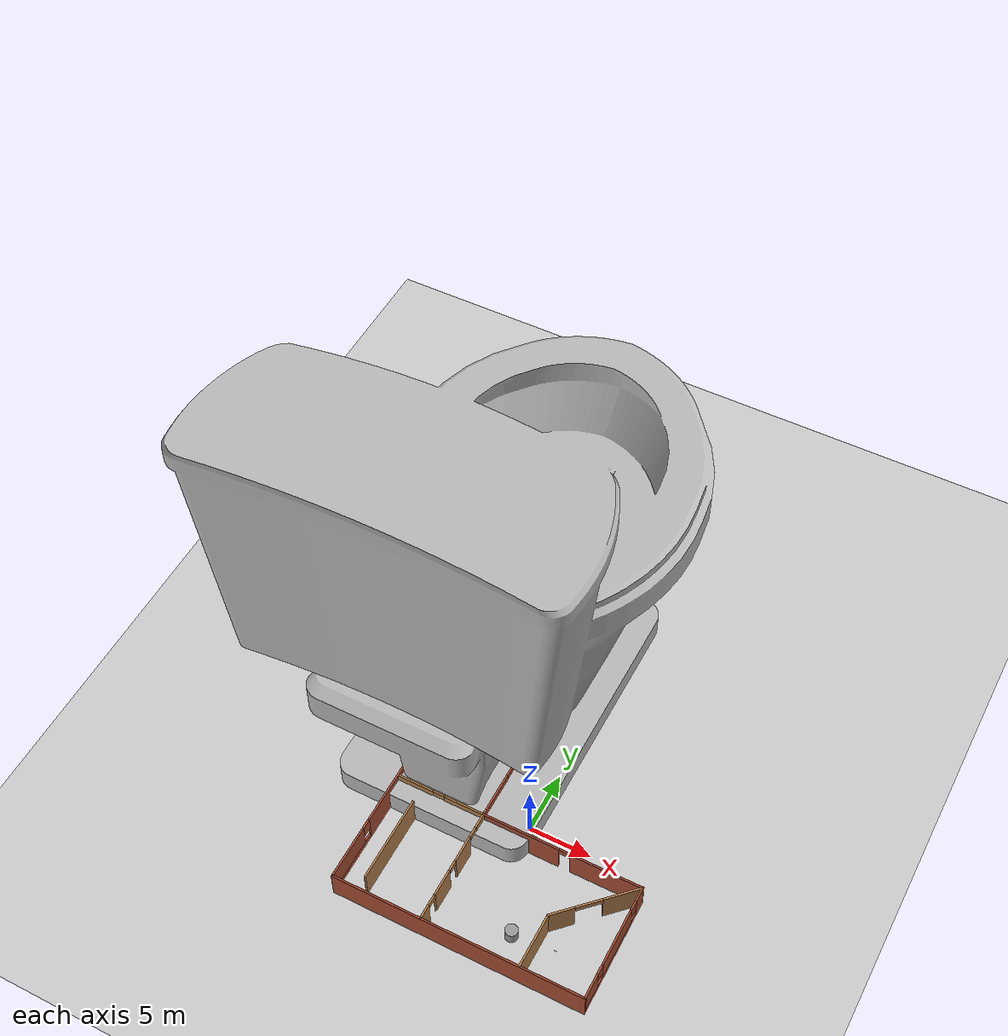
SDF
<sdf version="1.10">
 <world name="toilet_world">
  <model name="ground_plane">
   <static>true</static>
   <link name="link">
    <collision name="collision">
     <geometry><plane><normal>0 0 1</normal><size>100 100</size></plane></geometry>
     <surface><friction><ode><mu>100</mu><mu2>50</mu2></ode></friction></surface>
    </collision>
    <visual name="visual">
     <cast_shadows>false</cast_shadows>
     <geometry><plane><normal>0 0 1</normal><size>100 100</size></plane></geometry>
     <material>
      <script><uri>file://media/materials/scripts/gazebo.material</uri><name>Gazebo/Grey</name></script>
     </material>
    </visual>
    <inertial>
     <mass>1</mass>
     <inertia><ixx>1</ixx><ixy>0</ixy><ixz>0</ixz><iyy>1</iyy><iyz>0</iyz><izz>1</izz></inertia>
    </inertial>
   </link>
  </model>
  <model name="test_room">
   <pose>-0.077849000000002277 -1.2312600000000151 0 0 0 -1.4432899320127035e-15</pose>
   <link name="Wall_1">
    <pose>-10.0852 -6.9999999999999999e-06 0 0 0 -1.5708</pose>
    <visual name="Wall_1_Visual_0">
     <pose>-2.6008399999999998 0 1.25 0 0 0</pose>
     <geometry><box><size>14.826599999999999 0.14999999999999999 2.5</size></box></geometry>
     <material>
      <script><uri>file://media/materials/scripts/gazebo.material</uri><name>Gazebo/Bricks</name></script>
      <ambient>1 1 1 1</ambient>
     </material>
     <meta><layer>0</layer></meta>
    </visual>
    <collision name="Wall_1_Collision_0">
     <geometry><box><size>14.826599999999999 0.14999999999999999 2.5</size></box></geometry>
     <pose>-2.6008399999999998 0 1.25 0 0 0</pose>
    </collision>
    <visual name="Wall_1_Visual_1">
     <pose>7.4133100000000001 0 0.25 0 0 0</pose>
     <geometry><box><size>5.20167 0.14999999999999999 0.5</size></box></geometry>
     <material>
      <script><uri>file://media/materials/scripts/gazebo.material</uri><name>Gazebo/Bricks</name></script>
      <ambient>1 1 1 1</ambient>
     </material>
     <meta><layer>0</layer></meta>
    </visual>
    <collision name="Wall_1_Collision_1">
     <geometry><box><size>5.20167 0.14999999999999999 0.5</size></box></geometry>
     <pose>7.4133100000000001 0 0.25 0 0 0</pose>
    </collision>
    <visual name="Wall_1_Visual_2">
     <pose>7.8133100000000004 0 1.5 0 0 0</pose>
     <geometry><box><size>4.4016700000000002 0.14999999999999999 2</size></box></geometry>
     <material>
      <script><uri>file://media/materials/scripts/gazebo.material</uri><name>Gazebo/Bricks</name></script>
      <ambient>1 1 1 1</ambient>
     </material>
     <meta><layer>0</layer></meta>
    </visual>
    <collision name="Wall_1_Collision_2">
     <geometry><box><size>4.4016700000000002 0.14999999999999999 2</size></box></geometry>
     <pose>7.8133100000000004 0 1.5 0 0 0</pose>
    </collision>
    <visual name="Wall_1_Visual_3">
     <pose>5.2124800000000002 0 1.8999999999999999 0 0 0</pose>
     <geometry><box><size>0.80000000000000004 0.14999999999999999 1.2</size></box></geometry>
     <material>
      <script><uri>file://media/materials/scripts/gazebo.material</uri><name>Gazebo/Bricks</name></script>
      <ambient>1 1 1 1</ambient>
     </material>
     <meta><layer>0</layer></meta>
    </visual>
    <collision name="Wall_1_Collision_3">
     <geometry><box><size>0.80000000000000004 0.14999999999999999 1.2</size></box></geometry>
     <pose>5.2124800000000002 0 1.8999999999999999 0 0 0</pose>
    </collision>
    <inertial>
     <mass>1</mass>
     <inertia><ixx>1</ixx><ixy>0</ixy><ixz>0</ixz><iyy>1</iyy><iyz>0</iyz><izz>1</izz></inertia>
    </inertial>
   </link>
   <link name="Wall_10">
    <pose>10.052600000000012 -5.2189899999999714 0 0 0 -1.5643299999999982</pose>
    <visual name="Wall_10_Visual_0">
     <pose>-4.1680999999999999 0 1.25 0 0 0</pose>
     <geometry><box><size>1.2333700000000001 0.14999999999999999 2.5</size></box></geometry>
     <material>
      <script><uri>file://media/materials/scripts/gazebo.material</uri><name>Gazebo/Bricks</name></script>
      <ambient>1 1 1 1</ambient>
     </material>
     <meta><layer>0</layer></meta>
    </visual>
    <collision name="Wall_10_Collision_0">
     <geometry><box><size>1.2333700000000001 0.14999999999999999 2.5</size></box></geometry>
     <pose>-4.1680999999999999 0 1.25 0 0 0</pose>
    </collision>
    <visual name="Wall_10_Visual_1">
     <pose>0.61668599999999996 0 0.25 0 0 0</pose>
     <geometry><box><size>8.3361999999999998 0.14999999999999999 0.5</size></box></geometry>
     <material>
      <script><uri>file://media/materials/scripts/gazebo.material</uri><name>Gazebo/Bricks</name></script>
      <ambient>1 1 1 1</ambient>
     </material>
     <meta><layer>0</layer></meta>
    </visual>
    <collision name="Wall_10_Collision_1">
     <geometry><box><size>8.3361999999999998 0.14999999999999999 0.5</size></box></geometry>
     <pose>0.61668599999999996 0 0.25 0 0 0</pose>
    </collision>
    <visual name="Wall_10_Visual_2">
     <pose>-0.41019699999999998 0 1.5 0 0 0</pose>
     <geometry><box><size>4.6824399999999997 0.14999999999999999 2</size></box></geometry>
     <material>
      <script><uri>file://media/materials/scripts/gazebo.material</uri><name>Gazebo/Bricks</name></script>
      <ambient>1 1 1 1</ambient>
     </material>
     <meta><layer>0</layer></meta>
    </visual>
    <collision name="Wall_10_Collision_2">
     <geometry><box><size>4.6824399999999997 0.14999999999999999 2</size></box></geometry>
     <pose>-0.41019699999999998 0 1.5 0 0 0</pose>
    </collision>
    <visual name="Wall_10_Visual_3">
     <pose>3.7579099999999999 0 1.5 0 0 0</pose>
     <geometry><box><size>2.05376 0.14999999999999999 2</size></box></geometry>
     <material>
      <script><uri>file://media/materials/scripts/gazebo.material</uri><name>Gazebo/Bricks</name></script>
      <ambient>1 1 1 1</ambient>
     </material>
     <meta><layer>0</layer></meta>
    </visual>
    <collision name="Wall_10_Collision_3">
     <geometry><box><size>2.05376 0.14999999999999999 2</size></box></geometry>
     <pose>3.7579099999999999 0 1.5 0 0 0</pose>
    </collision>
    <visual name="Wall_10_Visual_4">
     <pose>-3.1514199999999999 0 1.8999999999999999 0 0 0</pose>
     <geometry><box><size>0.80000000000000004 0.14999999999999999 1.2</size></box></geometry>
     <material>
      <script><uri>file://media/materials/scripts/gazebo.material</uri><name>Gazebo/Bricks</name></script>
      <ambient>1 1 1 1</ambient>
     </material>
     <meta><layer>0</layer></meta>
    </visual>
    <collision name="Wall_10_Collision_4">
     <geometry><box><size>0.80000000000000004 0.14999999999999999 1.2</size></box></geometry>
     <pose>-3.1514199999999999 0 1.8999999999999999 0 0 0</pose>
    </collision>
    <visual name="Wall_10_Visual_5">
     <pose>2.3310200000000001 0 1.8999999999999999 0 0 0</pose>
     <geometry><box><size>0.80000000000000004 0.14999999999999999 1.2</size></box></geometry>
     <material>
      <script><uri>file://media/materials/scripts/gazebo.material</uri><name>Gazebo/Bricks</name></script>
      <ambient>1 1 1 1</ambient>
     </material>
     <meta><layer>0</layer></meta>
    </visual>
    <collision name="Wall_10_Collision_5">
     <geometry><box><size>0.80000000000000004 0.14999999999999999 1.2</size></box></geometry>
     <pose>2.3310200000000001 0 1.8999999999999999 0 0 0</pose>
    </collision>
    <inertial>
     <mass>1</mass>
     <inertia><ixx>1</ixx><ixy>0</ixy><ixz>0</ixz><iyy>1</iyy><iyz>0</iyz><izz>1</izz></inertia>
    </inertial>
   </link>
   <link name="Wall_12">
    <collision name="Wall_12_Collision">
     <geometry><box><size>7.4126399999999997 0.14999999999999999 2.5</size></box></geometry>
     <pose>0 0 1.25 0 0 0</pose>
    </collision>
    <visual name="Wall_12_Visual">
     <pose>0 0 1.25 0 0 0</pose>
     <geometry><box><size>7.4126399999999997 0.14999999999999999 2.5</size></box></geometry>
     <material>
      <script><uri>file://media/materials/scripts/gazebo.material</uri><name>Gazebo/Bricks</name></script>
      <ambient>1 1 1 1</ambient>
     </material>
     <meta><layer>0</layer></meta>
    </visual>
    <pose>-6.4538500000000099 9.9384100000000046 0 0 0 -0.00020300000278703243</pose>
    <inertial>
     <mass>1</mass>
     <inertia><ixx>1</ixx><ixy>0</ixy><ixz>0</ixz><iyy>1</iyy><iyz>0</iyz><izz>1</izz></inertia>
    </inertial>
   </link>
   <link name="Wall_16">
    <pose>-6.4131499999999946 -0.50716799999999385 0 0 0 3.1415900000000012</pose>
    <visual name="Wall_16_Visual_0">
     <pose>-1.94676 0 1.25 0 0 0</pose>
     <geometry><box><size>3.3564799999999999 0.14999999999999999 2.5</size></box></geometry>
     <material>
      <script><uri>file://media/materials/scripts/gazebo.material</uri><name>Gazebo/Wood</name></script>
      <ambient>1 1 1 1</ambient>
     </material>
     <meta><layer>0</layer></meta>
    </visual>
    <collision name="Wall_16_Collision_0">
     <geometry><box><size>3.3564799999999999 0.14999999999999999 2.5</size></box></geometry>
     <pose>-1.94676 0 1.25 0 0 0</pose>
    </collision>
    <visual name="Wall_16_Visual_1">
     <pose>2.1282399999999999 0 1.25 0 0 0</pose>
     <geometry><box><size>2.9935200000000002 0.14999999999999999 2.5</size></box></geometry>
     <material>
      <script><uri>file://media/materials/scripts/gazebo.material</uri><name>Gazebo/Wood</name></script>
      <ambient>1 1 1 1</ambient>
     </material>
     <meta><layer>0</layer></meta>
    </visual>
    <collision name="Wall_16_Collision_1">
     <geometry><box><size>2.9935200000000002 0.14999999999999999 2.5</size></box></geometry>
     <pose>2.1282399999999999 0 1.25 0 0 0</pose>
    </collision>
    <visual name="Wall_16_Visual_2">
     <pose>0.181481 0 2.25 0 0 0</pose>
     <geometry><box><size>0.90000000000000002 0.14999999999999999 0.5</size></box></geometry>
     <material>
      <script><uri>file://media/materials/scripts/gazebo.material</uri><name>Gazebo/Wood</name></script>
      <ambient>1 1 1 1</ambient>
     </material>
     <meta><layer>0</layer></meta>
    </visual>
    <collision name="Wall_16_Collision_2">
     <geometry><box><size>0.90000000000000002 0.14999999999999999 0.5</size></box></geometry>
     <pose>0.181481 0 2.25 0 0 0</pose>
    </collision>
    <inertial>
     <mass>1</mass>
     <inertia><ixx>1</ixx><ixy>0</ixy><ixz>0</ixz><iyy>1</iyy><iyz>0</iyz><izz>1</izz></inertia>
    </inertial>
   </link>
   <link name="Wall_18">
    <pose>-2.8631499999999872 -5.1821699999999868 0 0 0 -1.5707999999999993</pose>
    <visual name="Wall_18_Visual_0">
     <pose>-4.08833 0 1.25 0 0 0</pose>
     <geometry><box><size>1.32334 0.14999999999999999 2.5</size></box></geometry>
     <material>
      <script><uri>file://media/materials/scripts/gazebo.material</uri><name>Gazebo/Wood</name></script>
      <ambient>1 1 1 1</ambient>
     </material>
     <meta><layer>0</layer></meta>
    </visual>
    <collision name="Wall_18_Collision_0">
     <geometry><box><size>1.32334 0.14999999999999999 2.5</size></box></geometry>
     <pose>-4.08833 0 1.25 0 0 0</pose>
    </collision>
    <visual name="Wall_18_Visual_1">
     <pose>-1.45004 0 1.25 0 0 0</pose>
     <geometry><box><size>2.1532399999999998 0.14999999999999999 2.5</size></box></geometry>
     <material>
      <script><uri>file://media/materials/scripts/gazebo.material</uri><name>Gazebo/Wood</name></script>
      <ambient>1 1 1 1</ambient>
     </material>
     <meta><layer>0</layer></meta>
    </visual>
    <collision name="Wall_18_Collision_1">
     <geometry><box><size>2.1532399999999998 0.14999999999999999 2.5</size></box></geometry>
     <pose>-1.45004 0 1.25 0 0 0</pose>
    </collision>
    <visual name="Wall_18_Visual_2">
     <pose>1.60632 0 1.25 0 0 0</pose>
     <geometry><box><size>2.1594799999999998 0.14999999999999999 2.5</size></box></geometry>
     <material>
      <script><uri>file://media/materials/scripts/gazebo.material</uri><name>Gazebo/Wood</name></script>
      <ambient>1 1 1 1</ambient>
     </material>
     <meta><layer>0</layer></meta>
    </visual>
    <collision name="Wall_18_Collision_2">
     <geometry><box><size>2.1594799999999998 0.14999999999999999 2.5</size></box></geometry>
     <pose>1.60632 0 1.25 0 0 0</pose>
    </collision>
    <visual name="Wall_18_Visual_3">
     <pose>4.1680299999999999 0 1.25 0 0 0</pose>
     <geometry><box><size>1.16395 0.14999999999999999 2.5</size></box></geometry>
     <material>
      <script><uri>file://media/materials/scripts/gazebo.material</uri><name>Gazebo/Wood</name></script>
      <ambient>1 1 1 1</ambient>
     </material>
     <meta><layer>0</layer></meta>
    </visual>
    <collision name="Wall_18_Collision_3">
     <geometry><box><size>1.16395 0.14999999999999999 2.5</size></box></geometry>
     <pose>4.1680299999999999 0 1.25 0 0 0</pose>
    </collision>
    <visual name="Wall_18_Visual_4">
     <pose>-2.9766599999999999 0 2.25 0 0 0</pose>
     <geometry><box><size>0.90000000000000002 0.14999999999999999 0.5</size></box></geometry>
     <material>
      <script><uri>file://media/materials/scripts/gazebo.material</uri><name>Gazebo/Wood</name></script>
      <ambient>1 1 1 1</ambient>
     </material>
     <meta><layer>0</layer></meta>
    </visual>
    <collision name="Wall_18_Collision_4">
     <geometry><box><size>0.90000000000000002 0.14999999999999999 0.5</size></box></geometry>
     <pose>-2.9766599999999999 0 2.25 0 0 0</pose>
    </collision>
    <visual name="Wall_18_Visual_5">
     <pose>0.076577000000000006 0 2.25 0 0 0</pose>
     <geometry><box><size>0.90000000000000002 0.14999999999999999 0.5</size></box></geometry>
     <material>
      <script><uri>file://media/materials/scripts/gazebo.material</uri><name>Gazebo/Wood</name></script>
      <ambient>1 1 1 1</ambient>
     </material>
     <meta><layer>0</layer></meta>
    </visual>
    <collision name="Wall_18_Collision_5">
     <geometry><box><size>0.90000000000000002 0.14999999999999999 0.5</size></box></geometry>
     <pose>0.076577000000000006 0 2.25 0 0 0</pose>
    </collision>
    <visual name="Wall_18_Visual_6">
     <pose>3.13605 0 2.25 0 0 0</pose>
     <geometry><box><size>0.90000000000000002 0.14999999999999999 0.5</size></box></geometry>
     <material>
      <script><uri>file://media/materials/scripts/gazebo.material</uri><name>Gazebo/Wood</name></script>
      <ambient>1 1 1 1</ambient>
     </material>
     <meta><layer>0</layer></meta>
    </visual>
    <collision name="Wall_18_Collision_6">
     <geometry><box><size>0.90000000000000002 0.14999999999999999 0.5</size></box></geometry>
     <pose>3.13605 0 2.25 0 0 0</pose>
    </collision>
    <inertial>
     <mass>1</mass>
     <inertia><ixx>1</ixx><ixy>0</ixy><ixz>0</ixz><iyy>1</iyy><iyz>0</iyz><izz>1</izz></inertia>
    </inertial>
   </link>
   <link name="Wall_20">
    <collision name="Wall_20_Collision">
     <geometry><box><size>7 0.14999999999999999 2.5</size></box></geometry>
     <pose>0 0 1.25 0 0 0</pose>
    </collision>
    <visual name="Wall_20_Visual">
     <pose>0 0 1.25 0 0 0</pose>
     <geometry><box><size>7 0.14999999999999999 2.5</size></box></geometry>
     <material>
      <script><uri>file://media/materials/scripts/gazebo.material</uri><name>Gazebo/Wood</name></script>
      <ambient>1 1 1 1</ambient>
     </material>
     <meta><layer>0</layer></meta>
    </visual>
    <pose>-7.9691699999999894 -5.4442299999999975 0 0 0 -1.5707999999999993</pose>
    <inertial>
     <mass>1</mass>
     <inertia><ixx>1</ixx><ixy>0</ixy><ixz>0</ixz><iyy>1</iyy><iyz>0</iyz><izz>1</izz></inertia>
    </inertial>
   </link>
   <link name="Wall_22">
    <pose>7.5118800000000094 -3.0195299999999752 0 0 0 -2.3561899999999985</pose>
    <visual name="Wall_22_Visual_0">
     <pose>-2.0926499999999999 0 1.25 0 0 0</pose>
     <geometry><box><size>3.0647099999999998 0.14999999999999999 2.5</size></box></geometry>
     <material>
      <script><uri>file://media/materials/scripts/gazebo.material</uri><name>Gazebo/Wood</name></script>
      <ambient>1 1 1 1</ambient>
     </material>
     <meta><layer>0</layer></meta>
    </visual>
    <collision name="Wall_22_Collision_0">
     <geometry><box><size>3.0647099999999998 0.14999999999999999 2.5</size></box></geometry>
     <pose>-2.0926499999999999 0 1.25 0 0 0</pose>
    </collision>
    <visual name="Wall_22_Visual_1">
     <pose>2.58752 0 1.25 0 0 0</pose>
     <geometry><box><size>2.0749599999999999 0.14999999999999999 2.5</size></box></geometry>
     <material>
      <script><uri>file://media/materials/scripts/gazebo.material</uri><name>Gazebo/Wood</name></script>
      <ambient>1 1 1 1</ambient>
     </material>
     <meta><layer>0</layer></meta>
    </visual>
    <collision name="Wall_22_Collision_1">
     <geometry><box><size>2.0749599999999999 0.14999999999999999 2.5</size></box></geometry>
     <pose>2.58752 0 1.25 0 0 0</pose>
    </collision>
    <visual name="Wall_22_Visual_2">
     <pose>0.49487399999999998 0 2.25 0 0 0</pose>
     <geometry><box><size>2.1103299999999998 0.14999999999999999 0.5</size></box></geometry>
     <material>
      <script><uri>file://media/materials/scripts/gazebo.material</uri><name>Gazebo/Wood</name></script>
      <ambient>1 1 1 1</ambient>
     </material>
     <meta><layer>0</layer></meta>
    </visual>
    <collision name="Wall_22_Collision_2">
     <geometry><box><size>2.1103299999999998 0.14999999999999999 0.5</size></box></geometry>
     <pose>0.49487399999999998 0 2.25 0 0 0</pose>
    </collision>
    <inertial>
     <mass>1</mass>
     <inertia><ixx>1</ixx><ixy>0</ixy><ixz>0</ixz><iyy>1</iyy><iyz>0</iyz><izz>1</izz></inertia>
    </inertial>
   </link>
   <link name="Wall_23">
    <collision name="Wall_23_Collision">
     <geometry><box><size>4.5 0.14999999999999999 2.5</size></box></geometry>
     <pose>0 0 1.25 0 0 0</pose>
    </collision>
    <visual name="Wall_23_Visual">
     <pose>0 0 1.25 0 0 0</pose>
     <geometry><box><size>4.5 0.14999999999999999 2.5</size></box></geometry>
     <material>
      <script><uri>file://media/materials/scripts/gazebo.material</uri><name>Gazebo/Wood</name></script>
      <ambient>1 1 1 1</ambient>
     </material>
     <meta><layer>0</layer></meta>
    </visual>
    <pose>5.0016500000000157 -7.704759999999979 0 0 0 -1.5707999999999993</pose>
    <inertial>
     <mass>1</mass>
     <inertia><ixx>1</ixx><ixy>0</ixy><ixz>0</ixz><iyy>1</iyy><iyz>0</iyz><izz>1</izz></inertia>
    </inertial>
   </link>
   <link name="Wall_3">
    <collision name="Wall_3_Collision">
     <geometry><box><size>20.320399999999999 0.14999999999999999 2.5</size></box></geometry>
     <pose>0 0 1.25 0 0 0</pose>
    </collision>
    <visual name="Wall_3_Visual">
     <pose>0 0 1.25 0 0 0</pose>
     <geometry><box><size>20.320399999999999 0.14999999999999999 2.5</size></box></geometry>
     <material>
      <script><uri>file://media/materials/scripts/gazebo.material</uri><name>Gazebo/Bricks</name></script>
      <ambient>1 1 1 1</ambient>
     </material>
     <meta><layer>0</layer></meta>
    </visual>
    <pose>8.000000019672826e-06 -9.9391599999999851 0 0 0 1.4432899320127037e-15</pose>
    <inertial>
     <mass>1</mass>
     <inertia><ixx>1</ixx><ixy>0</ixy><ixz>0</ixz><iyy>1</iyy><iyz>0</iyz><izz>1</izz></inertia>
    </inertial>
   </link>
   <link name="Wall_7">
    <pose>-2.8423100000000017 4.7152500000000099 0 0 0 -1.5745799999999988</pose>
    <visual name="Wall_7_Visual_0">
     <pose>-3.9284500000000002 0 1.25 0 0 0</pose>
     <geometry><box><size>2.7380599999999999 0.14999999999999999 2.5</size></box></geometry>
     <material>
      <script><uri>file://media/materials/scripts/gazebo.material</uri><name>Gazebo/Bricks</name></script>
      <ambient>1 1 1 1</ambient>
     </material>
     <meta><layer>0</layer></meta>
    </visual>
    <collision name="Wall_7_Collision_0">
     <geometry><box><size>2.7380599999999999 0.14999999999999999 2.5</size></box></geometry>
     <pose>-3.9284500000000002 0 1.25 0 0 0</pose>
    </collision>
    <visual name="Wall_7_Visual_1">
     <pose>3.3884400000000001 0 1.25 0 0 0</pose>
     <geometry><box><size>3.8180700000000001 0.14999999999999999 2.5</size></box></geometry>
     <material>
      <script><uri>file://media/materials/scripts/gazebo.material</uri><name>Gazebo/Bricks</name></script>
      <ambient>1 1 1 1</ambient>
     </material>
     <meta><layer>0</layer></meta>
    </visual>
    <collision name="Wall_7_Collision_1">
     <geometry><box><size>3.8180700000000001 0.14999999999999999 2.5</size></box></geometry>
     <pose>3.3884400000000001 0 1.25 0 0 0</pose>
    </collision>
    <visual name="Wall_7_Visual_2">
     <pose>-0.54000400000000004 0 2.25 0 0 0</pose>
     <geometry><box><size>4.0388200000000003 0.14999999999999999 0.5</size></box></geometry>
     <material>
      <script><uri>file://media/materials/scripts/gazebo.material</uri><name>Gazebo/Bricks</name></script>
      <ambient>1 1 1 1</ambient>
     </material>
     <meta><layer>0</layer></meta>
    </visual>
    <collision name="Wall_7_Collision_2">
     <geometry><box><size>4.0388200000000003 0.14999999999999999 0.5</size></box></geometry>
     <pose>-0.54000400000000004 0 2.25 0 0 0</pose>
    </collision>
    <inertial>
     <mass>1</mass>
     <inertia><ixx>1</ixx><ixy>0</ixy><ixz>0</ixz><iyy>1</iyy><iyz>0</iyz><izz>1</izz></inertia>
    </inertial>
   </link>
   <link name="Wall_8">
    <pose>3.5800100000000072 -0.50823699999998007 0 0 0 -0.00016600000152332205</pose>
    <visual name="Wall_8_Visual_0">
     <pose>-3.36964 0 1.25 0 0 0</pose>
     <geometry><box><size>6.2949200000000003 0.14999999999999999 2.5</size></box></geometry>
     <material>
      <script><uri>file://media/materials/scripts/gazebo.material</uri><name>Gazebo/Bricks</name></script>
      <ambient>1 1 1 1</ambient>
     </material>
     <meta><layer>0</layer></meta>
    </visual>
    <collision name="Wall_8_Collision_0">
     <geometry><box><size>6.2949200000000003 0.14999999999999999 2.5</size></box></geometry>
     <pose>-3.36964 0 1.25 0 0 0</pose>
    </collision>
    <visual name="Wall_8_Visual_1">
     <pose>3.5974599999999999 0 1.25 0 0 0</pose>
     <geometry><box><size>5.83927 0.14999999999999999 2.5</size></box></geometry>
     <material>
      <script><uri>file://media/materials/scripts/gazebo.material</uri><name>Gazebo/Bricks</name></script>
      <ambient>1 1 1 1</ambient>
     </material>
     <meta><layer>0</layer></meta>
    </visual>
    <collision name="Wall_8_Collision_1">
     <geometry><box><size>5.83927 0.14999999999999999 2.5</size></box></geometry>
     <pose>3.5974599999999999 0 1.25 0 0 0</pose>
    </collision>
    <visual name="Wall_8_Visual_2">
     <pose>0.227824 0 2.25 0 0 0</pose>
     <geometry><box><size>0.90000000000000002 0.14999999999999999 0.5</size></box></geometry>
     <material>
      <script><uri>file://media/materials/scripts/gazebo.material</uri><name>Gazebo/Bricks</name></script>
      <ambient>1 1 1 1</ambient>
     </material>
     <meta><layer>0</layer></meta>
    </visual>
    <collision name="Wall_8_Collision_2">
     <geometry><box><size>0.90000000000000002 0.14999999999999999 0.5</size></box></geometry>
     <pose>0.227824 0 2.25 0 0 0</pose>
    </collision>
    <inertial>
     <mass>1</mass>
     <inertia><ixx>1</ixx><ixy>0</ixy><ixz>0</ixz><iyy>1</iyy><iyz>0</iyz><izz>1</izz></inertia>
    </inertial>
   </link>
   <static>true</static>
  </model>
  <model name="unit_cylinder">
   <pose>2.8368799999999998 -8.3325999999999993 0.5 0 0 0</pose>
   <link name="link">
    <inertial>
     <mass>1</mass>
     <inertia>
      <ixx>0.14583299999999999</ixx>
      <ixy>0</ixy>
      <ixz>0</ixz>
      <iyy>0.14583299999999999</iyy>
      <iyz>0</iyz>
      <izz>0.125</izz>
     </inertia>
    </inertial>
    <collision name="collision">
     <geometry><cylinder><radius>0.5</radius><length>1</length></cylinder></geometry>
    </collision>
    <visual name="visual">
     <geometry><cylinder><radius>0.5</radius><length>1</length></cylinder></geometry>
     <material>
      <script><name>Gazebo/Grey</name><uri>file://media/materials/scripts/gazebo.material</uri></script>
     </material>
    </visual>
   </link>
   <static>false</static>
  </model>
  <model name="whiteboard">
   <static>true</static>
   <link name="link">
    <collision name="collision">
     <pose>-0.010992 -0.000776 0.99821199999999999 0 0 0</pose>
     <geometry><box><size>1.9737199999999999 0.69681999999999999 2.0250699999999999</size></box></geometry>
    </collision>
    <visual name="visual">
     <geometry>
      <mesh>
       <uri>file:///home/aero360/nolon_armcontrol/model://whiteboard/meshes/whiteboard.obj</uri>
       <scale>0.01 0.01 0.01</scale>
      </mesh>
     </geometry>
    </visual>
    <inertial>
     <mass>1</mass>
     <inertia><ixx>1</ixx><ixy>0</ixy><ixz>0</ixz><iyy>1</iyy><iyz>0</iyz><izz>1</izz></inertia>
    </inertial>
   </link>
   <pose>7.3027701377868652 -11.088600158691406 -0.0034432599786669016 1.5816663049527053 0 0</pose>
  </model>
  <model name="window_squeegee_2">
   <static>false</static>
   <link name="squeegee_body">
    <inertial>
     <mass>0.17999999999999999</mass>
     <pose>0 0 0.080000000000000002 0 0 0</pose>
     <inertia>
      <ixx>0.00089999999999999998</ixx>
      <ixy>0</ixy>
      <ixz>0</ixz>
      <iyy>0.0011999999999999999</iyy>
      <iyz>0</iyz>
      <izz>0.0015</izz>
     </inertia>
    </inertial>
    <visual name="handle_visual">
     <pose>0 0 0.10000000000000001 0 0 0</pose>
     <geometry>
      <cylinder><radius>0.014999999999999999</radius><length>0.17999999999999999</length></cylinder>
     </geometry>
     <material>
      <ambient>0.200000003 0.200000003 0.800000012 1</ambient>
      <diffuse>0.200000003 0.200000003 0.800000012 1</diffuse>
      <specular>0.300000012 0.300000012 0.300000012 1</specular>
     </material>
    </visual>
    <collision name="handle_collision">
     <pose>0 0 0.10000000000000001 0 0 0</pose>
     <geometry>
      <cylinder><radius>0.014999999999999999</radius><length>0.17999999999999999</length></cylinder>
     </geometry>
    </collision>
    <visual name="grip_visual">
     <pose>0 0 0.080000000000000002 0 0 0</pose>
     <geometry>
      <cylinder><radius>0.017000000000000001</radius><length>0.050000000000000003</length></cylinder>
     </geometry>
     <material>
      <ambient>0.100000001 0.100000001 0.100000001 1</ambient>
      <diffuse>0.100000001 0.100000001 0.100000001 1</diffuse>
      <specular>0.0500000007 0.0500000007 0.0500000007 1</specular>
     </material>
    </visual>
    <visual name="frame_visual">
     <pose>0 0 0.0050000000000000001 0 0 0</pose>
     <geometry><box><size>0.25 0.02 0.01</size></box></geometry>
     <material>
      <ambient>0.699999988 0.699999988 0.699999988 1</ambient>
      <diffuse>0.699999988 0.699999988 0.699999988 1</diffuse>
      <specular>0.5 0.5 0.5 1</specular>
     </material>
    </visual>
    <collision name="frame_collision">
     <pose>0 0 0.0050000000000000001 0 0 0</pose>
     <geometry><box><size>0.25 0.02 0.01</size></box></geometry>
    </collision>
    <visual name="rubber_blade_visual">
     <pose>0 0 -0.0030000000000000001 0 0 0</pose>
     <geometry><box><size>0.23999999999999999 0.0030000000000000001 0.0080000000000000002</size></box></geometry>
     <material>
      <ambient>0.100000001 0.100000001 0.100000001 1</ambient>
      <diffuse>0.200000003 0.200000003 0.200000003 1</diffuse>
      <specular>0.0500000007 0.0500000007 0.0500000007 1</specular>
     </material>
    </visual>
    <collision name="rubber_blade_collision">
     <pose>0 0 -0.0030000000000000001 0 0 0</pose>
     <geometry><box><size>0.23999999999999999 0.0030000000000000001 0.0080000000000000002</size></box></geometry>
     <surface>
      <friction><ode><mu>0.80000000000000004</mu><mu2>0.80000000000000004</mu2></ode></friction>
      <bounce><restitution_coefficient>0.10000000000000001</restitution_coefficient></bounce>
      <contact>
       <ode>
        <soft_cfm>0.050000000000000003</soft_cfm>
        <soft_erp>0.20000000000000001</soft_erp>
        <kp>5000</kp>
        <kd>50</kd>
       </ode>
      </contact>
     </surface>
    </collision>
    <visual name="corner_support_left">
     <pose>-0.11 0 0 0 0 0</pose>
     <geometry><box><size>0.014999999999999999 0.025000000000000001 0.014999999999999999</size></box></geometry>
     <material>
      <ambient>0.699999988 0.699999988 0.699999988 1</ambient>
      <diffuse>0.699999988 0.699999988 0.699999988 1</diffuse>
      <specular>0.5 0.5 0.5 1</specular>
     </material>
    </visual>
    <visual name="corner_support_right">
     <pose>0.11 0 0 0 0 0</pose>
     <geometry><box><size>0.014999999999999999 0.025000000000000001 0.014999999999999999</size></box></geometry>
     <material>
      <ambient>0.699999988 0.699999988 0.699999988 1</ambient>
      <diffuse>0.699999988 0.699999988 0.699999988 1</diffuse>
      <specular>0.5 0.5 0.5 1</specular>
     </material>
    </visual>
    <visual name="connection_joint">
     <pose>0 0 0.014999999999999999 0 0 0</pose>
     <geometry><box><size>0.040000000000000001 0.029999999999999999 0.02</size></box></geometry>
     <material>
      <ambient>0.600000024 0.600000024 0.600000024 1</ambient>
      <diffuse>0.600000024 0.600000024 0.600000024 1</diffuse>
      <specular>0.400000006 0.400000006 0.400000006 1</specular>
     </material>
    </visual>
    <collision name="connection_joint_collision">
     <pose>0 0 0.014999999999999999 0 0 0</pose>
     <geometry><box><size>0.040000000000000001 0.029999999999999999 0.02</size></box></geometry>
    </collision>
   </link>
   <pose>6.102881908416748 -7.8917098045349121 0.010497599840164185 0 0 0</pose>
  </model>
  <model name="toilet_2">
   <static>true</static>
   <link name="link">
    <collision name="collision">
     <pose>-0.0038730000000000001 0.13400100000000001 0.58209699999999998 0 0 0</pose>
     <geometry><box><size>0.55163099999999998 1.09406 1.18218</size></box></geometry>
    </collision>
    <visual name="visual">
     <geometry>
      <mesh>
       <uri>file:///home/aero360/nolon_armcontrol/model://toilet/meshes/toilet.dae</uri>
       <scale>1.3999999999999999 1.3999999999999999 1.3999999999999999</scale>
      </mesh>
     </geometry>
    </visual>
    <inertial>
     <mass>1</mass>
     <inertia><ixx>1</ixx><ixy>0</ixy><ixz>0</ixz><iyy>1</iyy><iyz>0</iyz><izz>1</izz></inertia>
    </inertial>
   </link>
   <pose>5.6663236618041992 -8.4108991622924805 0 0 0 1.5694300101611132</pose>
  </model>
  <model name="whiteboard_0">
   <static>true</static>
   <link name="link">
    <collision name="collision">
     <pose>-0.010992 -0.000776 0.99821199999999999 0 0 0</pose>
     <geometry><box><size>1.9737199999999999 0.69681999999999999 2.0250699999999999</size></box></geometry>
    </collision>
    <visual name="visual">
     <geometry>
      <mesh>
       <uri>file:///home/aero360/nolon_armcontrol/model://whiteboard/meshes/whiteboard.obj</uri>
       <scale>0.01 0.01 0.01</scale>
      </mesh>
     </geometry>
    </visual>
    <inertial>
     <mass>1</mass>
     <inertia><ixx>1</ixx><ixy>0</ixy><ixz>0</ixz><iyy>1</iyy><iyz>0</iyz><izz>1</izz></inertia>
    </inertial>
   </link>
   <pose>9.895843505859375 -8.9399538040161133 -0.60817331075668335 1.5677099515421311 0.0037814544806114201 1.5470100210843238</pose>
  </model>
 </world>
</sdf>
